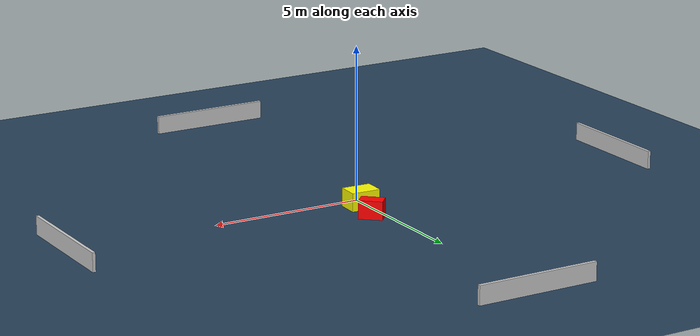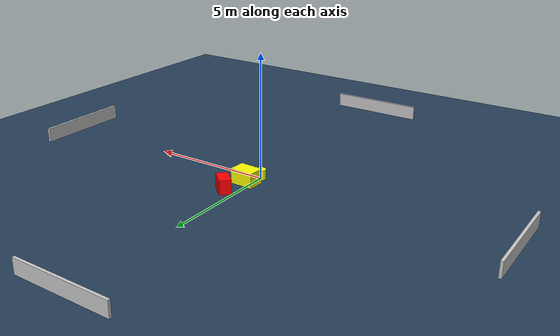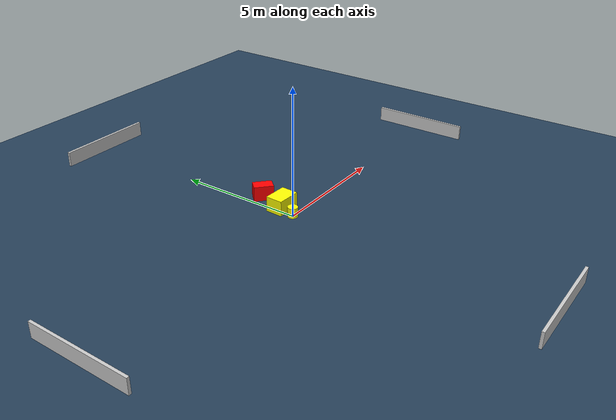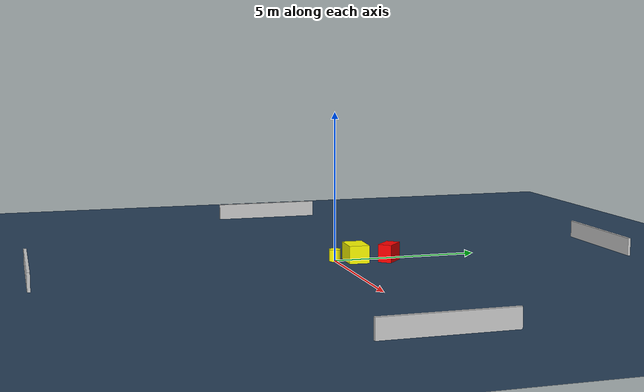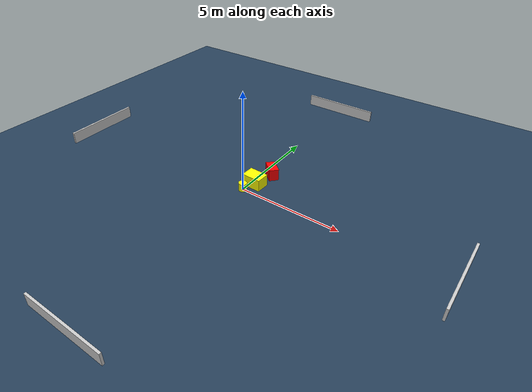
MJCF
<?xml version="1.0" ?>
<mujoco model="generated_environment">
  <option timestep="0.01" integrator="RK4" cone="elliptic"/>
  <default>
    <geom density="1"/>
  </default>
  <asset>
    <texture builtin="gradient" height="3072" name="skybox" rgb1="0.3 0.5 0.7" rgb2="0 0 0" type="skybox" width="512"/>
    <texture builtin="checker" height="300" name="groundplane" rgb1="0.2 0.3 0.4" rgb2="0.1 0.2 0.3" type="2d" width="300"/>
    <material name="groundplane" reflectance="0.2" texrepeat="5 5" texture="groundplane"/>
  </asset>
  <worldbody>
    <light dir="0 0 -1" directional="true" pos="0 0 1.5"/>
    <geom condim="3" friction="0.5 0.005 0.001" material="groundplane" name="floor" pos="0 0 0" size="0 0 0.05" type="plane"/>
    <body name="walls">
      <geom name="wall_1" condim="4" pos="-10.0 0.0 0.3" rgba="0.800000011920929 0.800000011920929 0.800000011920929 1.0" size="0.05 2.0 0.3" type="box"/>
      <geom name="wall_2" condim="4" pos="10.0 0.0 0.3" rgba="0.800000011920929 0.800000011920929 0.800000011920929 1.0" size="0.05 2.0 0.3" type="box"/>
      <geom name="wall_3" condim="4" pos="0.0 -10.0 0.3" rgba="0.800000011920929 0.800000011920929 0.800000011920929 1.0" size="2.0 0.05 0.3" type="box"/>
      <geom name="wall_4" condim="4" pos="0.0 10.0 0.3" rgba="0.800000011920929 0.800000011920929 0.800000011920929 1.0" size="2.0 0.05 0.3" type="box"/>
    </body>
    <body name="robot">
      <joint name="joint_x" type="slide" pos="0 0 0" axis="1 0 0"/>
      <joint name="joint_y" type="slide" pos="0 0 0" axis="0 1 0"/>
      <geom name="robot" type="cylinder" pos="0.0 0.0 0.2" size="0.2 0.2 0.0" mass="5.0" friction="1.0 0.005 0.0001" condim="4" rgba="1.0 1.0 0.0 1.0"/>
    </body>
    <body name="obstacle_1_movable">
      <geom name="obstacle_1_movable" condim="4" pos="0.2259051771230375 0.6642411320236647 0.3" euler="0 0 177.64717456938197" friction="0.0 0.005 0.001" rgba="1.0 1.0 0.0 1.0" size="0.4804211215493059 0.34176401642353393 0.3" type="box" mass="0.1"/>
      <joint type="free"/>
    </body>
    <body name="obstacle_2_static">
      <geom name="obstacle_2_static" condim="4" pos="0.4858012266821623 1.7535569641121593 0.3" euler="0 0 317.62303274450665" friction="0.0 0.005 0.001" rgba="1.0 0.0 0.0 1.0" size="0.3819753886152494 0.23439502418386676 0.3" type="box"/>
    </body>
  </worldbody>
  <actuator>
    <motor name="actuator_x" joint="joint_x" gear="1" ctrlrange="-1 1"/>
    <motor name="actuator_y" joint="joint_y" gear="1" ctrlrange="-1 1"/>
  </actuator>
</mujoco>
